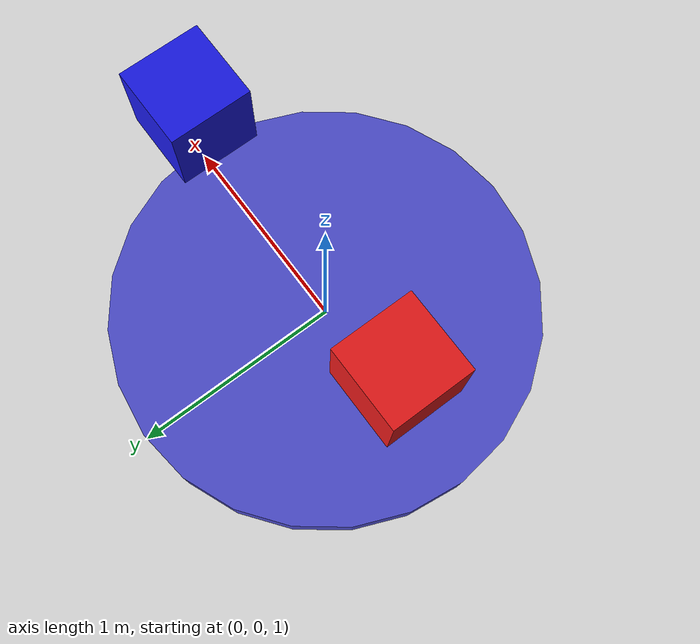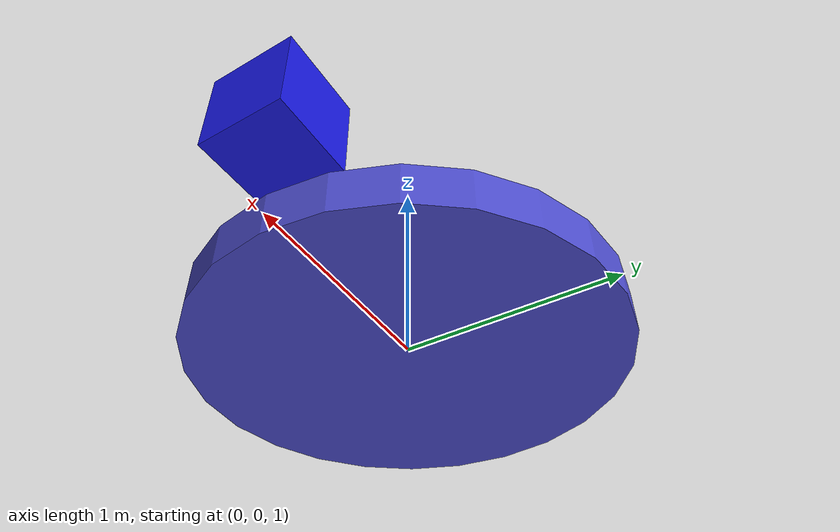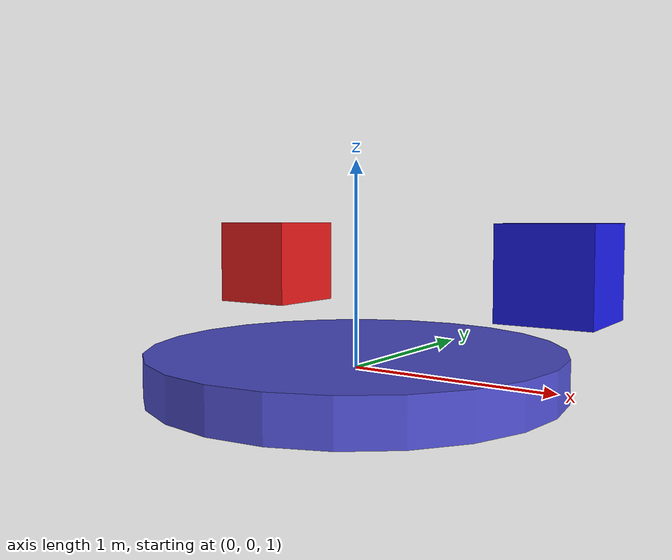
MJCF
<mujoco>
  <option gravity="0 0 -9.81"/>
  <worldbody>
    <body name="platform" pos="0 0 1">
      <geom type="cylinder" size="1 0.1" rgba="0.3 0.3 0.8 1" friction="0.5 0.5 0.5"/>
    </body>
    <body name="weight1" pos="-0.5 0 1.5">
      <geom type="box" size="0.2 0.2 0.2" density="1000" rgba="0.9 0.1 0.1 1"/>
      <joint name="w1" type="free"/>
    </body>
    <body name="weight2" pos="1 0 1.5">
      <geom type="box" size="0.2 0.2 0.2" density="500" rgba="0.1 0.1 0.9 1"/>
      <joint name="w2" type="free"/>
    </body>
  </worldbody>
</mujoco>
